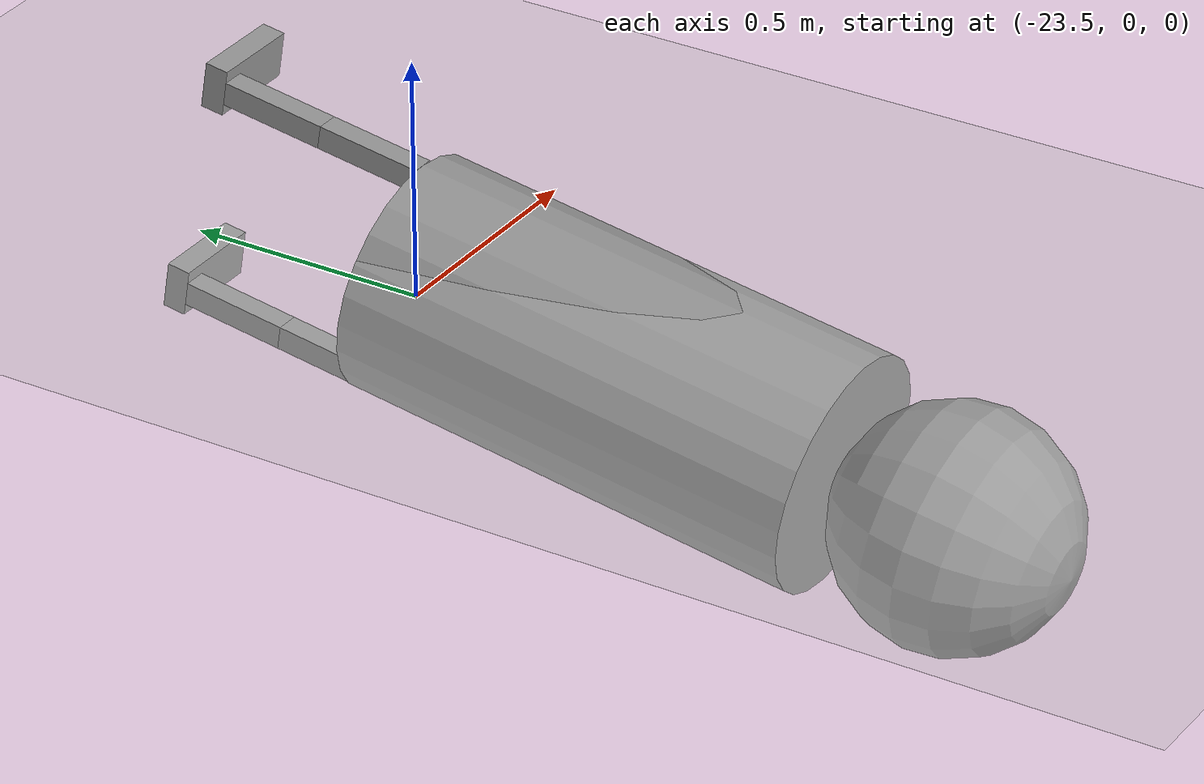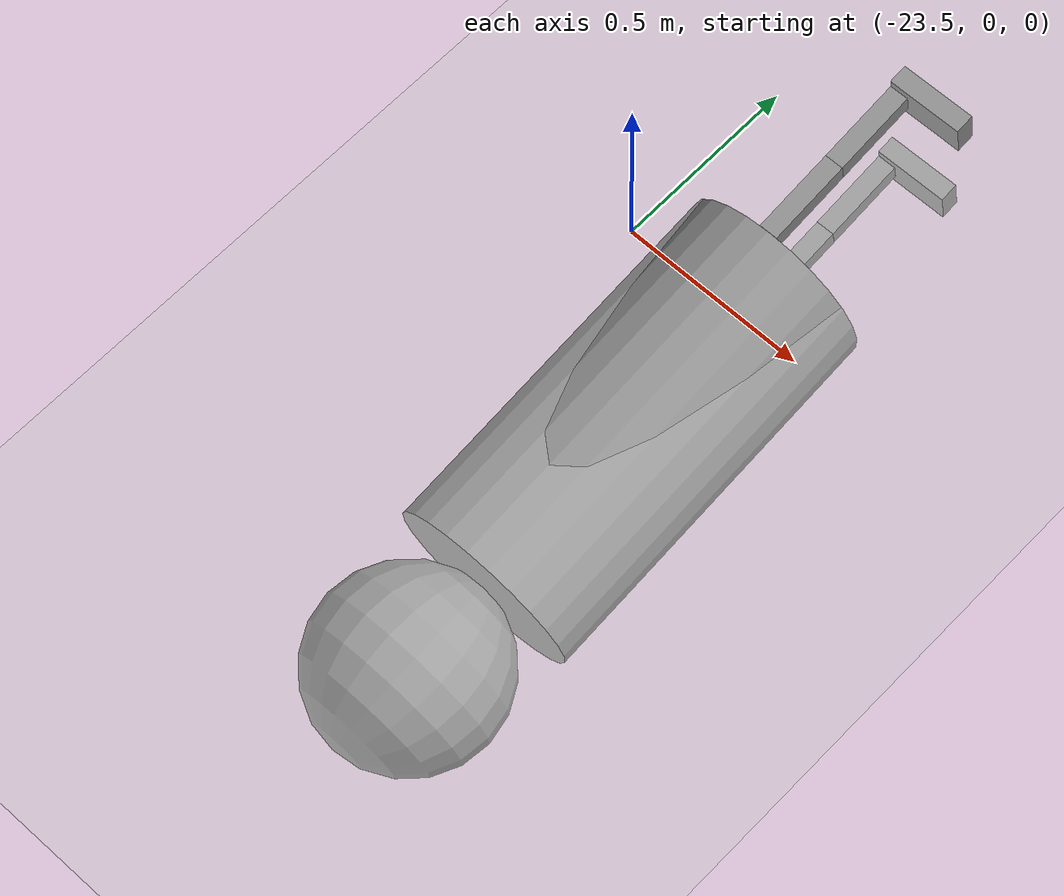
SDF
<sdf version="1.6">
 <world name="default">
  <model name="ground_plane">
   <static>1</static>
   <link name="link">
    <collision name="collision">
     <geometry><plane><normal>0 0 1</normal><size>100 100</size></plane></geometry>
     <surface>
      <contact><collide_bitmask>65535</collide_bitmask></contact>
      <friction><ode><mu>100</mu><mu2>50</mu2></ode></friction>
     </surface>
    </collision>
    <visual name="visual">
     <cast_shadows>0</cast_shadows>
     <geometry><plane><normal>0 0 1</normal><size>100 100</size></plane></geometry>
     <material>
      <script><uri>file://media/materials/scripts/gazebo.material</uri><name>Gazebo/Grey</name></script>
     </material>
    </visual>
   </link>
  </model>
  <model name="Android_clone">
   <link name="link_0_clone">
    <pose>0.077813 0.225 -0.462714 0 -0 0</pose>
    <inertial>
     <mass>1</mass>
     <inertia>
      <ixx>0.166667</ixx>
      <ixy>0</ixy>
      <ixz>0</ixz>
      <iyy>0.166667</iyy>
      <iyz>0</iyz>
      <izz>0.166667</izz>
     </inertia>
    </inertial>
    <visual name="visual">
     <geometry><box><size>0.2 0.1 0.05</size></box></geometry>
     <material>
      <lighting>1</lighting>
      <script><uri>file://media/materials/scripts/gazebo.material</uri><name>Gazebo/Grey</name></script>
      <shader type="pixel"><normal_map>__default__</normal_map></shader>
      <ambient>0.3 0.3 0.3 1</ambient>
      <diffuse>0.7 0.7 0.7 1</diffuse>
      <specular>0.01 0.01 0.01 1</specular>
      <emissive>0 0 0 1</emissive>
     </material>
    </visual>
    <collision name="collision">
     <geometry><box><size>0.2 0.1 0.05</size></box></geometry>
     <surface>
      <friction>
       <ode><mu>1</mu><mu2>1</mu2><fdir1>0 0 0</fdir1><slip1>0</slip1><slip2>0</slip2></ode>
       <torsional>
        <coefficient>1</coefficient>
        <patch_radius>0</patch_radius>
        <surface_radius>0</surface_radius>
        <use_patch_radius>1</use_patch_radius>
        <ode><slip>0</slip></ode>
       </torsional>
      </friction>
      <bounce><restitution_coefficient>0</restitution_coefficient><threshold>1e+06</threshold></bounce>
      <contact>
       <collide_without_contact>0</collide_without_contact>
       <collide_without_contact_bitmask>1</collide_without_contact_bitmask>
       <collide_bitmask>1</collide_bitmask>
       <ode>
        <soft_cfm>0</soft_cfm>
        <soft_erp>0.2</soft_erp>
        <kp>1e+13</kp>
        <kd>1</kd>
        <max_vel>0.01</max_vel>
        <min_depth>0</min_depth>
       </ode>
       <bullet>
        <split_impulse>1</split_impulse>
        <split_impulse_penetration_threshold>-0.01</split_impulse_penetration_threshold>
        <soft_cfm>0</soft_cfm>
        <soft_erp>0.2</soft_erp>
        <kp>1e+13</kp>
        <kd>1</kd>
       </bullet>
      </contact>
     </surface>
    </collision>
   </link>
   <link name="link_0_clone_clone">
    <pose>0.020312 -0.225 -0.462144 0 -0 0</pose>
    <inertial>
     <mass>1</mass>
     <inertia>
      <ixx>0.166667</ixx>
      <ixy>0</ixy>
      <ixz>0</ixz>
      <iyy>0.166667</iyy>
      <iyz>0</iyz>
      <izz>0.166667</izz>
     </inertia>
    </inertial>
    <visual name="visual">
     <geometry><box><size>0.2 0.1 0.05</size></box></geometry>
     <material>
      <lighting>1</lighting>
      <script><uri>file://media/materials/scripts/gazebo.material</uri><name>Gazebo/Grey</name></script>
      <shader type="pixel"><normal_map>__default__</normal_map></shader>
      <ambient>0.3 0.3 0.3 1</ambient>
      <diffuse>0.7 0.7 0.7 1</diffuse>
      <specular>0.01 0.01 0.01 1</specular>
      <emissive>0 0 0 1</emissive>
     </material>
    </visual>
    <collision name="collision">
     <geometry><box><size>0.2 0.1 0.05</size></box></geometry>
     <surface>
      <friction>
       <ode><mu>1</mu><mu2>1</mu2><fdir1>0 0 0</fdir1><slip1>0</slip1><slip2>0</slip2></ode>
       <torsional>
        <coefficient>1</coefficient>
        <patch_radius>0</patch_radius>
        <surface_radius>0</surface_radius>
        <use_patch_radius>1</use_patch_radius>
        <ode><slip>0</slip></ode>
       </torsional>
      </friction>
      <bounce><restitution_coefficient>0</restitution_coefficient><threshold>1e+06</threshold></bounce>
      <contact>
       <collide_without_contact>0</collide_without_contact>
       <collide_without_contact_bitmask>1</collide_without_contact_bitmask>
       <collide_bitmask>1</collide_bitmask>
       <ode>
        <soft_cfm>0</soft_cfm>
        <soft_erp>0.2</soft_erp>
        <kp>1e+13</kp>
        <kd>1</kd>
        <max_vel>0.01</max_vel>
        <min_depth>0</min_depth>
       </ode>
       <bullet>
        <split_impulse>1</split_impulse>
        <split_impulse_penetration_threshold>-0.01</split_impulse_penetration_threshold>
        <soft_cfm>0</soft_cfm>
        <soft_erp>0.2</soft_erp>
        <kp>1e+13</kp>
        <kd>1</kd>
       </bullet>
      </contact>
     </surface>
    </collision>
   </link>
   <link name="link_1">
    <pose>-0.054688 -0.225 -0.099644 0 -0 0</pose>
    <inertial>
     <mass>1</mass>
     <inertia>
      <ixx>0.166667</ixx>
      <ixy>0</ixy>
      <ixz>0</ixz>
      <iyy>0.166667</iyy>
      <iyz>0</iyz>
      <izz>0.166667</izz>
     </inertia>
    </inertial>
    <visual name="visual">
     <geometry><box><size>0.05 0.05 0.225</size></box></geometry>
     <material>
      <lighting>1</lighting>
      <script><uri>file://media/materials/scripts/gazebo.material</uri><name>Gazebo/Grey</name></script>
      <shader type="pixel"><normal_map>__default__</normal_map></shader>
      <ambient>0.3 0.3 0.3 1</ambient>
      <diffuse>0.7 0.7 0.7 1</diffuse>
      <specular>0.01 0.01 0.01 1</specular>
      <emissive>0 0 0 1</emissive>
     </material>
    </visual>
    <collision name="collision">
     <geometry><box><size>0.05 0.05 0.225</size></box></geometry>
     <surface>
      <friction>
       <ode><mu>1</mu><mu2>1</mu2><fdir1>0 0 0</fdir1><slip1>0</slip1><slip2>0</slip2></ode>
       <torsional>
        <coefficient>1</coefficient>
        <patch_radius>0</patch_radius>
        <surface_radius>0</surface_radius>
        <use_patch_radius>1</use_patch_radius>
        <ode><slip>0</slip></ode>
       </torsional>
      </friction>
      <bounce><restitution_coefficient>0</restitution_coefficient><threshold>1e+06</threshold></bounce>
      <contact>
       <collide_without_contact>0</collide_without_contact>
       <collide_without_contact_bitmask>1</collide_without_contact_bitmask>
       <collide_bitmask>1</collide_bitmask>
       <ode>
        <soft_cfm>0</soft_cfm>
        <soft_erp>0.2</soft_erp>
        <kp>1e+13</kp>
        <kd>1</kd>
        <max_vel>0.01</max_vel>
        <min_depth>0</min_depth>
       </ode>
       <bullet>
        <split_impulse>1</split_impulse>
        <split_impulse_penetration_threshold>-0.01</split_impulse_penetration_threshold>
        <soft_cfm>0</soft_cfm>
        <soft_erp>0.2</soft_erp>
        <kp>1e+13</kp>
        <kd>1</kd>
       </bullet>
      </contact>
     </surface>
    </collision>
   </link>
   <link name="link_1_clone">
    <pose>-0.054688 -0.225 -0.324644 0 -0 0</pose>
    <inertial>
     <mass>1</mass>
     <inertia>
      <ixx>0.166667</ixx>
      <ixy>0</ixy>
      <ixz>0</ixz>
      <iyy>0.166667</iyy>
      <iyz>0</iyz>
      <izz>0.166667</izz>
     </inertia>
    </inertial>
    <visual name="visual">
     <geometry><box><size>0.05 0.05 0.225</size></box></geometry>
     <material>
      <lighting>1</lighting>
      <script><uri>file://media/materials/scripts/gazebo.material</uri><name>Gazebo/Grey</name></script>
      <shader type="pixel"><normal_map>__default__</normal_map></shader>
      <ambient>0.3 0.3 0.3 1</ambient>
      <diffuse>0.7 0.7 0.7 1</diffuse>
      <specular>0.01 0.01 0.01 1</specular>
      <emissive>0 0 0 1</emissive>
     </material>
    </visual>
    <collision name="collision">
     <geometry><box><size>0.05 0.05 0.225</size></box></geometry>
     <surface>
      <friction>
       <ode><mu>1</mu><mu2>1</mu2><fdir1>0 0 0</fdir1><slip1>0</slip1><slip2>0</slip2></ode>
       <torsional>
        <coefficient>1</coefficient>
        <patch_radius>0</patch_radius>
        <surface_radius>0</surface_radius>
        <use_patch_radius>1</use_patch_radius>
        <ode><slip>0</slip></ode>
       </torsional>
      </friction>
      <bounce><restitution_coefficient>0</restitution_coefficient><threshold>1e+06</threshold></bounce>
      <contact>
       <collide_without_contact>0</collide_without_contact>
       <collide_without_contact_bitmask>1</collide_without_contact_bitmask>
       <collide_bitmask>1</collide_bitmask>
       <ode>
        <soft_cfm>0</soft_cfm>
        <soft_erp>0.2</soft_erp>
        <kp>1e+13</kp>
        <kd>1</kd>
        <max_vel>0.01</max_vel>
        <min_depth>0</min_depth>
       </ode>
       <bullet>
        <split_impulse>1</split_impulse>
        <split_impulse_penetration_threshold>-0.01</split_impulse_penetration_threshold>
        <soft_cfm>0</soft_cfm>
        <soft_erp>0.2</soft_erp>
        <kp>1e+13</kp>
        <kd>1</kd>
       </bullet>
      </contact>
     </surface>
    </collision>
   </link>
   <link name="link_1_clone_clone">
    <pose>0.002813 0.225 -0.100214 0 -0 0</pose>
    <inertial>
     <mass>1</mass>
     <inertia>
      <ixx>0.166667</ixx>
      <ixy>0</ixy>
      <ixz>0</ixz>
      <iyy>0.166667</iyy>
      <iyz>0</iyz>
      <izz>0.166667</izz>
     </inertia>
    </inertial>
    <visual name="visual">
     <geometry><box><size>0.05 0.05 0.225</size></box></geometry>
     <material>
      <lighting>1</lighting>
      <script><uri>file://media/materials/scripts/gazebo.material</uri><name>Gazebo/Grey</name></script>
      <shader type="pixel"><normal_map>__default__</normal_map></shader>
      <ambient>0.3 0.3 0.3 1</ambient>
      <diffuse>0.7 0.7 0.7 1</diffuse>
      <specular>0.01 0.01 0.01 1</specular>
      <emissive>0 0 0 1</emissive>
     </material>
    </visual>
    <collision name="collision">
     <geometry><box><size>0.05 0.05 0.225</size></box></geometry>
     <surface>
      <friction>
       <ode><mu>1</mu><mu2>1</mu2><fdir1>0 0 0</fdir1><slip1>0</slip1><slip2>0</slip2></ode>
       <torsional>
        <coefficient>1</coefficient>
        <patch_radius>0</patch_radius>
        <surface_radius>0</surface_radius>
        <use_patch_radius>1</use_patch_radius>
        <ode><slip>0</slip></ode>
       </torsional>
      </friction>
      <bounce><restitution_coefficient>0</restitution_coefficient><threshold>1e+06</threshold></bounce>
      <contact>
       <collide_without_contact>0</collide_without_contact>
       <collide_without_contact_bitmask>1</collide_without_contact_bitmask>
       <collide_bitmask>1</collide_bitmask>
       <ode>
        <soft_cfm>0</soft_cfm>
        <soft_erp>0.2</soft_erp>
        <kp>1e+13</kp>
        <kd>1</kd>
        <max_vel>0.01</max_vel>
        <min_depth>0</min_depth>
       </ode>
       <bullet>
        <split_impulse>1</split_impulse>
        <split_impulse_penetration_threshold>-0.01</split_impulse_penetration_threshold>
        <soft_cfm>0</soft_cfm>
        <soft_erp>0.2</soft_erp>
        <kp>1e+13</kp>
        <kd>1</kd>
       </bullet>
      </contact>
     </surface>
    </collision>
   </link>
   <link name="link_1_clone_clone_clone">
    <pose>0.002813 0.225 -0.325214 0 -0 0</pose>
    <inertial>
     <mass>1</mass>
     <inertia>
      <ixx>0.166667</ixx>
      <ixy>0</ixy>
      <ixz>0</ixz>
      <iyy>0.166667</iyy>
      <iyz>0</iyz>
      <izz>0.166667</izz>
     </inertia>
    </inertial>
    <visual name="visual">
     <geometry><box><size>0.05 0.05 0.225</size></box></geometry>
     <material>
      <lighting>1</lighting>
      <script><uri>file://media/materials/scripts/gazebo.material</uri><name>Gazebo/Grey</name></script>
      <shader type="pixel"><normal_map>__default__</normal_map></shader>
      <ambient>0.3 0.3 0.3 1</ambient>
      <diffuse>0.7 0.7 0.7 1</diffuse>
      <specular>0.01 0.01 0.01 1</specular>
      <emissive>0 0 0 1</emissive>
     </material>
    </visual>
    <collision name="collision">
     <geometry><box><size>0.05 0.05 0.225</size></box></geometry>
     <surface>
      <friction>
       <ode><mu>1</mu><mu2>1</mu2><fdir1>0 0 0</fdir1><slip1>0</slip1><slip2>0</slip2></ode>
       <torsional>
        <coefficient>1</coefficient>
        <patch_radius>0</patch_radius>
        <surface_radius>0</surface_radius>
        <use_patch_radius>1</use_patch_radius>
        <ode><slip>0</slip></ode>
       </torsional>
      </friction>
      <bounce><restitution_coefficient>0</restitution_coefficient><threshold>1e+06</threshold></bounce>
      <contact>
       <collide_without_contact>0</collide_without_contact>
       <collide_without_contact_bitmask>1</collide_without_contact_bitmask>
       <collide_bitmask>1</collide_bitmask>
       <ode>
        <soft_cfm>0</soft_cfm>
        <soft_erp>0.2</soft_erp>
        <kp>1e+13</kp>
        <kd>1</kd>
        <max_vel>0.01</max_vel>
        <min_depth>0</min_depth>
       </ode>
       <bullet>
        <split_impulse>1</split_impulse>
        <split_impulse_penetration_threshold>-0.01</split_impulse_penetration_threshold>
        <soft_cfm>0</soft_cfm>
        <soft_erp>0.2</soft_erp>
        <kp>1e+13</kp>
        <kd>1</kd>
       </bullet>
      </contact>
     </surface>
    </collision>
   </link>
   <link name="link_2">
    <pose>0.002813 0 0.512286 0 -0 0</pose>
    <inertial>
     <mass>1</mass>
     <inertia><ixx>0.145833</ixx><ixy>0</ixy><ixz>0</ixz><iyy>0.145833</iyy><iyz>0</iyz><izz>0.125</izz></inertia>
    </inertial>
    <visual name="visual">
     <geometry><cylinder><radius>0.25</radius><length>1</length></cylinder></geometry>
     <material>
      <lighting>1</lighting>
      <script><uri>file://media/materials/scripts/gazebo.material</uri><name>Gazebo/Grey</name></script>
      <shader type="pixel"><normal_map>__default__</normal_map></shader>
      <ambient>0.3 0.3 0.3 1</ambient>
      <diffuse>0.7 0.7 0.7 1</diffuse>
      <specular>0.01 0.01 0.01 1</specular>
      <emissive>0 0 0 1</emissive>
     </material>
    </visual>
    <collision name="collision">
     <geometry><cylinder><radius>0.25</radius><length>1</length></cylinder></geometry>
     <surface>
      <friction>
       <ode><mu>1</mu><mu2>1</mu2><fdir1>0 0 0</fdir1><slip1>0</slip1><slip2>0</slip2></ode>
       <torsional>
        <coefficient>1</coefficient>
        <patch_radius>0</patch_radius>
        <surface_radius>0</surface_radius>
        <use_patch_radius>1</use_patch_radius>
        <ode><slip>0</slip></ode>
       </torsional>
      </friction>
      <bounce><restitution_coefficient>0</restitution_coefficient><threshold>1e+06</threshold></bounce>
      <contact>
       <collide_without_contact>0</collide_without_contact>
       <collide_without_contact_bitmask>1</collide_without_contact_bitmask>
       <collide_bitmask>1</collide_bitmask>
       <ode>
        <soft_cfm>0</soft_cfm>
        <soft_erp>0.2</soft_erp>
        <kp>1e+13</kp>
        <kd>1</kd>
        <max_vel>0.01</max_vel>
        <min_depth>0</min_depth>
       </ode>
       <bullet>
        <split_impulse>1</split_impulse>
        <split_impulse_penetration_threshold>-0.01</split_impulse_penetration_threshold>
        <soft_cfm>0</soft_cfm>
        <soft_erp>0.2</soft_erp>
        <kp>1e+13</kp>
        <kd>1</kd>
       </bullet>
      </contact>
     </surface>
    </collision>
   </link>
   <link name="link_3">
    <pose>0.002813 0 1.26229 0 -0 0</pose>
    <inertial>
     <mass>1</mass>
     <inertia><ixx>0.1</ixx><ixy>0</ixy><ixz>0</ixz><iyy>0.1</iyy><iyz>0</iyz><izz>0.1</izz></inertia>
    </inertial>
    <visual name="visual">
     <geometry><sphere><radius>0.25</radius></sphere></geometry>
     <material>
      <lighting>1</lighting>
      <script><uri>file://media/materials/scripts/gazebo.material</uri><name>Gazebo/Grey</name></script>
      <shader type="pixel"><normal_map>__default__</normal_map></shader>
      <ambient>0.3 0.3 0.3 1</ambient>
      <diffuse>0.7 0.7 0.7 1</diffuse>
      <specular>0.01 0.01 0.01 1</specular>
      <emissive>0 0 0 1</emissive>
     </material>
    </visual>
    <collision name="collision">
     <geometry><sphere><radius>0.25</radius></sphere></geometry>
     <surface>
      <friction>
       <ode><mu>1</mu><mu2>1</mu2><fdir1>0 0 0</fdir1><slip1>0</slip1><slip2>0</slip2></ode>
       <torsional>
        <coefficient>1</coefficient>
        <patch_radius>0</patch_radius>
        <surface_radius>0</surface_radius>
        <use_patch_radius>1</use_patch_radius>
        <ode><slip>0</slip></ode>
       </torsional>
      </friction>
      <bounce><restitution_coefficient>0</restitution_coefficient><threshold>1e+06</threshold></bounce>
      <contact>
       <collide_without_contact>0</collide_without_contact>
       <collide_without_contact_bitmask>1</collide_without_contact_bitmask>
       <collide_bitmask>1</collide_bitmask>
       <ode>
        <soft_cfm>0</soft_cfm>
        <soft_erp>0.2</soft_erp>
        <kp>1e+13</kp>
        <kd>1</kd>
        <max_vel>0.01</max_vel>
        <min_depth>0</min_depth>
       </ode>
       <bullet>
        <split_impulse>1</split_impulse>
        <split_impulse_penetration_threshold>-0.01</split_impulse_penetration_threshold>
        <soft_cfm>0</soft_cfm>
        <soft_erp>0.2</soft_erp>
        <kp>1e+13</kp>
        <kd>1</kd>
       </bullet>
      </contact>
     </surface>
    </collision>
   </link>
   <joint name="link_1_JOINT_14" type="revolute">
    <parent>link_1</parent>
    <child>link_1_clone</child>
    <axis>
     <xyz>-1 0 0</xyz>
     <use_parent_model_frame>0</use_parent_model_frame>
     <limit>
      <lower>-1.79769e+308</lower>
      <upper>1.79769e+308</upper>
      <effort>-1</effort>
      <velocity>-1</velocity>
     </limit>
     <dynamics>
      <spring_reference>0</spring_reference>
      <spring_stiffness>0</spring_stiffness>
      <damping>0</damping>
     </dynamics>
    </axis>
    <physics>
     <ode><limit><cfm>0</cfm><erp>0.2</erp></limit><suspension><cfm>0</cfm><erp>0.2</erp></suspension></ode>
    </physics>
   </joint>
   <joint name="link_1_clone_JOINT_15" type="revolute">
    <parent>link_1_clone</parent>
    <child>link_0_clone_clone</child>
    <axis>
     <xyz>1 0 0</xyz>
     <use_parent_model_frame>0</use_parent_model_frame>
     <limit>
      <lower>-1.79769e+308</lower>
      <upper>1.79769e+308</upper>
      <effort>-1</effort>
      <velocity>-1</velocity>
     </limit>
     <dynamics>
      <spring_reference>0</spring_reference>
      <spring_stiffness>0</spring_stiffness>
      <damping>0</damping>
     </dynamics>
    </axis>
    <physics>
     <ode><limit><cfm>0</cfm><erp>0.2</erp></limit><suspension><cfm>0</cfm><erp>0.2</erp></suspension></ode>
    </physics>
   </joint>
   <joint name="link_1_clone_clone_JOINT_11" type="revolute">
    <parent>link_1_clone_clone</parent>
    <child>link_1_clone_clone_clone</child>
    <axis>
     <xyz>-1 0 0</xyz>
     <use_parent_model_frame>0</use_parent_model_frame>
     <limit>
      <lower>-1.79769e+308</lower>
      <upper>1.79769e+308</upper>
      <effort>-1</effort>
      <velocity>-1</velocity>
     </limit>
     <dynamics>
      <spring_reference>0</spring_reference>
      <spring_stiffness>0</spring_stiffness>
      <damping>0</damping>
     </dynamics>
    </axis>
    <physics>
     <ode><limit><cfm>0</cfm><erp>0.2</erp></limit><suspension><cfm>0</cfm><erp>0.2</erp></suspension></ode>
    </physics>
   </joint>
   <joint name="link_1_clone_clone_clone_JOINT_12" type="revolute">
    <parent>link_1_clone_clone_clone</parent>
    <child>link_0_clone</child>
    <axis>
     <xyz>1 0 0</xyz>
     <use_parent_model_frame>0</use_parent_model_frame>
     <limit>
      <lower>-1.79769e+308</lower>
      <upper>1.79769e+308</upper>
      <effort>-1</effort>
      <velocity>-1</velocity>
     </limit>
     <dynamics>
      <spring_reference>0</spring_reference>
      <spring_stiffness>0</spring_stiffness>
      <damping>0</damping>
     </dynamics>
    </axis>
    <physics>
     <ode><limit><cfm>0</cfm><erp>0.2</erp></limit><suspension><cfm>0</cfm><erp>0.2</erp></suspension></ode>
    </physics>
   </joint>
   <joint name="link_2_JOINT_10" type="revolute">
    <parent>link_2</parent>
    <child>link_1_clone_clone</child>
    <axis>
     <xyz>1 0 0</xyz>
     <use_parent_model_frame>0</use_parent_model_frame>
     <limit>
      <lower>-1.79769e+308</lower>
      <upper>1.79769e+308</upper>
      <effort>-1</effort>
      <velocity>-1</velocity>
     </limit>
     <dynamics>
      <spring_reference>0</spring_reference>
      <spring_stiffness>0</spring_stiffness>
      <damping>0</damping>
     </dynamics>
    </axis>
    <physics>
     <ode><limit><cfm>0</cfm><erp>0.2</erp></limit><suspension><cfm>0</cfm><erp>0.2</erp></suspension></ode>
    </physics>
   </joint>
   <joint name="link_2_JOINT_13" type="revolute">
    <parent>link_2</parent>
    <child>link_1</child>
    <axis>
     <xyz>1 0 0</xyz>
     <use_parent_model_frame>0</use_parent_model_frame>
     <limit>
      <lower>-1.79769e+308</lower>
      <upper>1.79769e+308</upper>
      <effort>-1</effort>
      <velocity>-1</velocity>
     </limit>
     <dynamics>
      <spring_reference>0</spring_reference>
      <spring_stiffness>0</spring_stiffness>
      <damping>0</damping>
     </dynamics>
    </axis>
    <physics>
     <ode><limit><cfm>0</cfm><erp>0.2</erp></limit><suspension><cfm>0</cfm><erp>0.2</erp></suspension></ode>
    </physics>
   </joint>
   <joint name="link_3_JOINT_20" type="revolute">
    <parent>link_2</parent>
    <child>link_3</child>
    <axis>
     <xyz>0 0 1</xyz>
     <use_parent_model_frame>0</use_parent_model_frame>
     <limit>
      <lower>-1.79769e+308</lower>
      <upper>1.79769e+308</upper>
      <effort>-1</effort>
      <velocity>-1</velocity>
     </limit>
     <dynamics>
      <spring_reference>0</spring_reference>
      <spring_stiffness>0</spring_stiffness>
      <damping>0</damping>
     </dynamics>
    </axis>
    <physics>
     <ode><limit><cfm>0</cfm><erp>0.2</erp></limit><suspension><cfm>0</cfm><erp>0.2</erp></suspension></ode>
    </physics>
   </joint>
   <static>0</static>
   <pose>-23.2307 0.211663 -0.130636 1.73057 4e-06 0.001328</pose>
  </model>
 </world>
</sdf>
